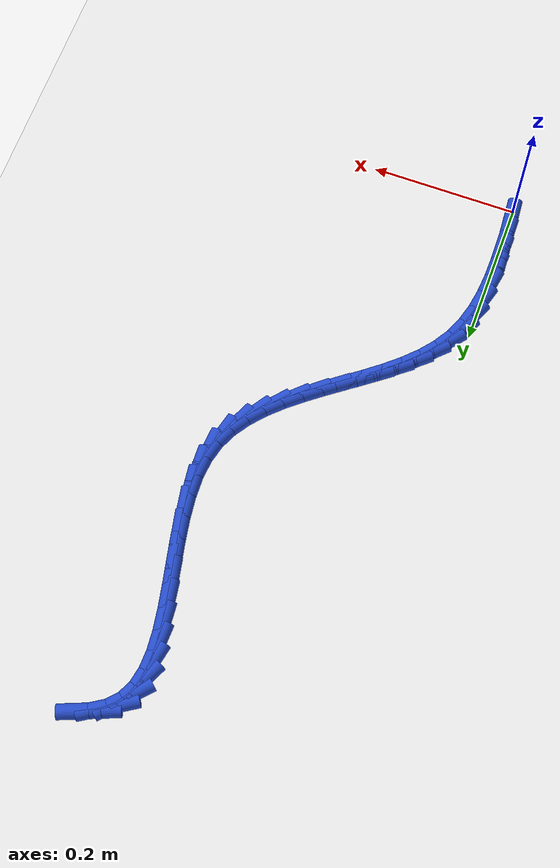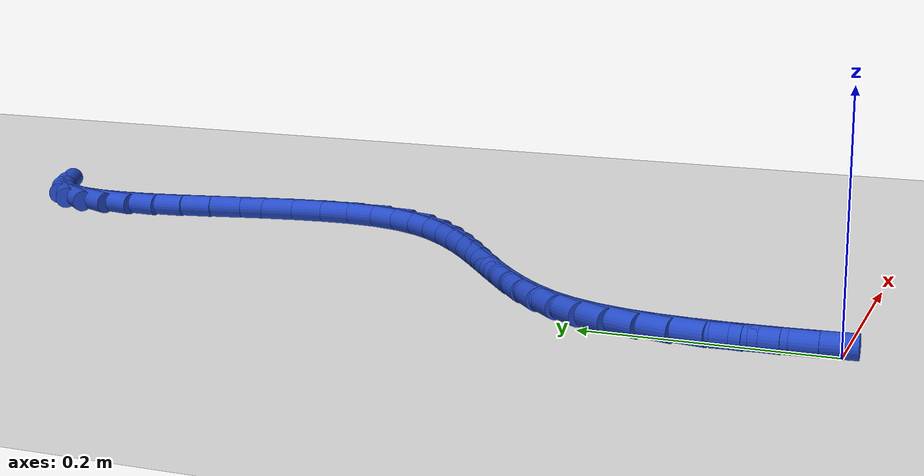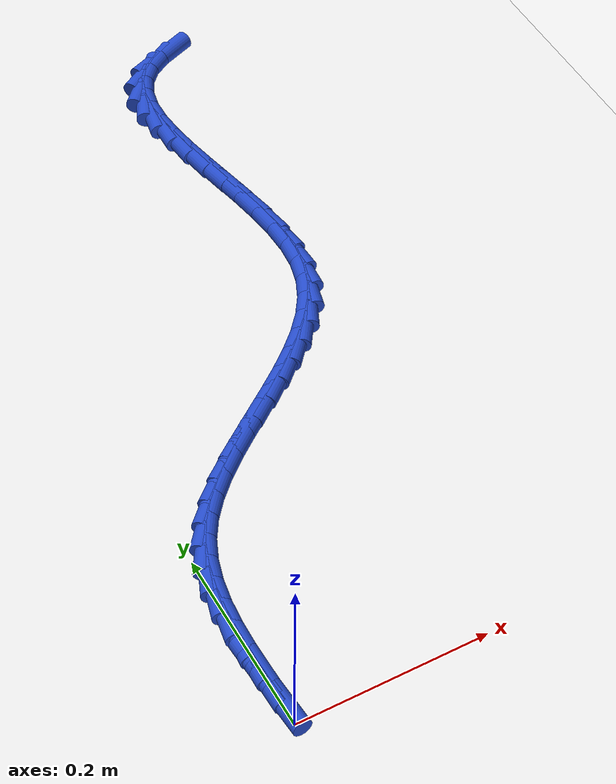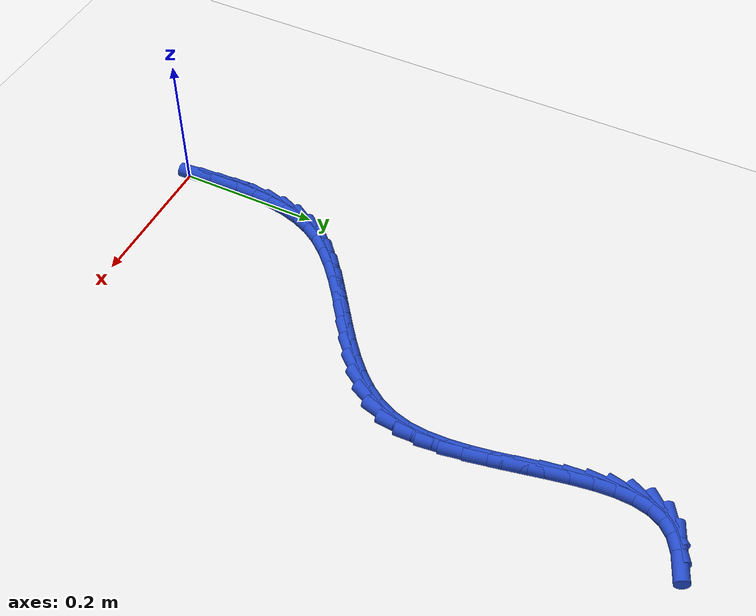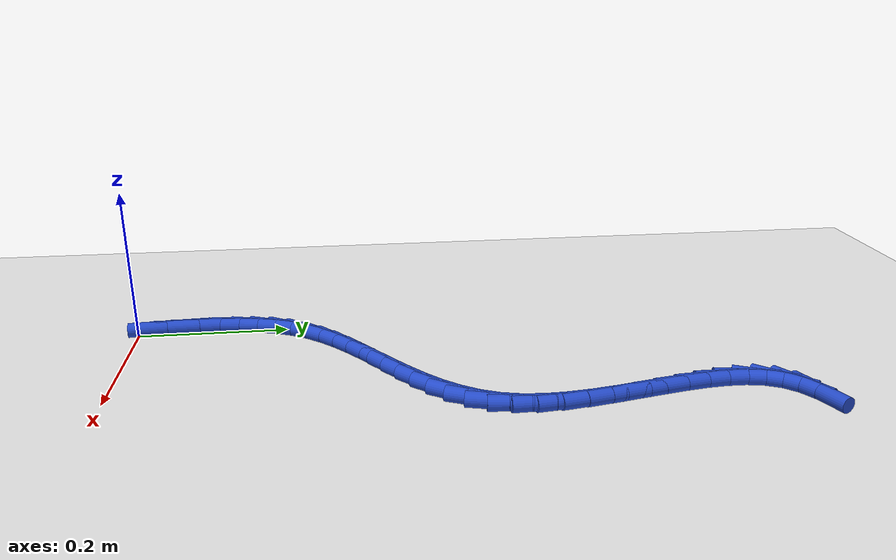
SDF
<sdf version="1.6">
 <world name="default">
  <model name="ground_plane">
   <static>1</static>
   <link name="link">
    <collision name="collision">
     <geometry><plane><normal>0 0 1</normal><size>100 100</size></plane></geometry>
     <surface><friction><ode><mu>100</mu><mu2>50</mu2></ode></friction></surface>
    </collision>
    <visual name="visual">
     <cast_shadows>0</cast_shadows>
     <geometry><plane><normal>0 0 1</normal><size>100 100</size></plane></geometry>
     <material>
      <script><uri>file://media/materials/scripts/gazebo.material</uri><name>Gazebo/WhiteGlow</name></script>
     </material>
    </visual>
   </link>
  </model>
  <model name="line">
   <link name="link_2">
    <pose>-0.0028533487512401143 0.055658057841972974 0.01 0 1.57 -1.5515178897495352</pose>
    <collision name="collision">
     <geometry><cylinder><radius>0.01</radius><length>0.08</length></cylinder></geometry>
    </collision>
    <visual name="visual">
     <material>
      <script><name>Gazebo/Blue</name><uri>file://media/materials/scripts/gazebo.material</uri></script>
     </material>
     <geometry><cylinder><radius>0.01</radius><length>0.08</length></cylinder></geometry>
    </visual>
   </link>
   <link name="link_3">
    <pose>-0.003387599189018616 0.08336695606374567 0.01 0 1.57 1.5464380096162942</pose>
    <collision name="collision">
     <geometry><cylinder><radius>0.01</radius><length>0.08</length></cylinder></geometry>
    </collision>
    <visual name="visual">
     <material>
      <script><name>Gazebo/Blue</name><uri>file://media/materials/scripts/gazebo.material</uri></script>
     </material>
     <geometry><cylinder><radius>0.01</radius><length>0.08</length></cylinder></geometry>
    </visual>
   </link>
   <link name="link_4">
    <pose>-0.0027227108026782543 0.1106577117175157 0.01 0 1.57 1.4839659882193301</pose>
    <collision name="collision">
     <geometry><cylinder><radius>0.01</radius><length>0.08</length></cylinder></geometry>
    </collision>
    <visual name="visual">
     <material>
      <script><name>Gazebo/Blue</name><uri>file://media/materials/scripts/gazebo.material</uri></script>
     </material>
     <geometry><cylinder><radius>0.01</radius><length>0.08</length></cylinder></geometry>
    </visual>
   </link>
   <link name="link_5">
    <pose>-0.00040554144305065577 0.13727678322688783 0.01 0 1.57 1.400340100375214</pose>
    <collision name="collision">
     <geometry><cylinder><radius>0.01</radius><length>0.08</length></cylinder></geometry>
    </collision>
    <visual name="visual">
     <material>
      <script><name>Gazebo/Blue</name><uri>file://media/materials/scripts/gazebo.material</uri></script>
     </material>
     <geometry><cylinder><radius>0.01</radius><length>0.08</length></cylinder></geometry>
    </visual>
   </link>
   <link name="link_6">
    <pose>0.00401705103903255 0.16297062901546686 0.01 0 1.57 1.2933699475771159</pose>
    <collision name="collision">
     <geometry><cylinder><radius>0.01</radius><length>0.08</length></cylinder></geometry>
    </collision>
    <visual name="visual">
     <material>
      <script><name>Gazebo/Blue</name><uri>file://media/materials/scripts/gazebo.material</uri></script>
     </material>
     <geometry><cylinder><radius>0.01</radius><length>0.08</length></cylinder></geometry>
    </visual>
   </link>
   <link name="link_7">
    <pose>0.010998208792739737 0.1874857075068576 0.01 0 1.57 1.1622411889832707</pose>
    <collision name="collision">
     <geometry><cylinder><radius>0.01</radius><length>0.08</length></cylinder></geometry>
    </collision>
    <visual name="visual">
     <material>
      <script><name>Gazebo/Blue</name><uri>file://media/materials/scripts/gazebo.material</uri></script>
     </material>
     <geometry><cylinder><radius>0.01</radius><length>0.08</length></cylinder></geometry>
    </visual>
   </link>
   <link name="link_8">
    <pose>0.020991073967239274 0.21056847712466498 0.01 0 1.57 1.013370379714491</pose>
    <collision name="collision">
     <geometry><cylinder><radius>0.01</radius><length>0.08</length></cylinder></geometry>
    </collision>
    <visual name="visual">
     <material>
      <script><name>Gazebo/Blue</name><uri>file://media/materials/scripts/gazebo.material</uri></script>
     </material>
     <geometry><cylinder><radius>0.01</radius><length>0.08</length></cylinder></geometry>
    </visual>
   </link>
   <link name="link_9">
    <pose>0.03435846541911029 0.23201224664798528 0.01 0 1.57 0.8814153671516375</pose>
    <collision name="collision">
     <geometry><cylinder><radius>0.01</radius><length>0.08</length></cylinder></geometry>
    </collision>
    <visual name="visual">
     <material>
      <script><name>Gazebo/Blue</name><uri>file://media/materials/scripts/gazebo.material</uri></script>
     </material>
     <geometry><cylinder><radius>0.01</radius><length>0.08</length></cylinder></geometry>
    </visual>
   </link>
   <link name="link_10">
    <pose>0.05079764593346319 0.2519555463115774 0.01 0 1.57 0.7807491866684296</pose>
    <collision name="collision">
     <geometry><cylinder><radius>0.01</radius><length>0.08</length></cylinder></geometry>
    </collision>
    <visual name="visual">
     <material>
      <script><name>Gazebo/Blue</name><uri>file://media/materials/scripts/gazebo.material</uri></script>
     </material>
     <geometry><cylinder><radius>0.01</radius><length>0.08</length></cylinder></geometry>
    </visual>
   </link>
   <link name="link_11">
    <pose>0.06970835082238525 0.27069123274243007 0.01 0 1.57 0.7088960014780832</pose>
    <collision name="collision">
     <geometry><cylinder><radius>0.01</radius><length>0.08</length></cylinder></geometry>
    </collision>
    <visual name="visual">
     <material>
      <script><name>Gazebo/Blue</name><uri>file://media/materials/scripts/gazebo.material</uri></script>
     </material>
     <geometry><cylinder><radius>0.01</radius><length>0.08</length></cylinder></geometry>
    </visual>
   </link>
   <link name="link_12">
    <pose>0.09048892853185583 0.2885128819298177 0.01 0 1.57 0.6625143995143489</pose>
    <collision name="collision">
     <geometry><cylinder><radius>0.01</radius><length>0.08</length></cylinder></geometry>
    </collision>
    <visual name="visual">
     <material>
      <script><name>Gazebo/Blue</name><uri>file://media/materials/scripts/gazebo.material</uri></script>
     </material>
     <geometry><cylinder><radius>0.01</radius><length>0.08</length></cylinder></geometry>
    </visual>
   </link>
   <link name="link_13">
    <pose>0.11253772750785415 0.30571406986301447 0.01 0 1.57 0.6389148015976219</pose>
    <collision name="collision">
     <geometry><cylinder><radius>0.01</radius><length>0.08</length></cylinder></geometry>
    </collision>
    <visual name="visual">
     <material>
      <script><name>Gazebo/Blue</name><uri>file://media/materials/scripts/gazebo.material</uri></script>
     </material>
     <geometry><cylinder><radius>0.01</radius><length>0.08</length></cylinder></geometry>
    </visual>
   </link>
   <link name="link_14">
    <pose>0.13525309619635947 0.32258837253129463 0.01 0 1.57 0.6366044481341545</pose>
    <collision name="collision">
     <geometry><cylinder><radius>0.01</radius><length>0.08</length></cylinder></geometry>
    </collision>
    <visual name="visual">
     <material>
      <script><name>Gazebo/Blue</name><uri>file://media/materials/scripts/gazebo.material</uri></script>
     </material>
     <geometry><cylinder><radius>0.01</radius><length>0.08</length></cylinder></geometry>
    </visual>
   </link>
   <link name="link_15">
    <pose>0.1580333830433512 0.3394293659239326 0.01 0 1.57 0.6554366983390438</pose>
    <collision name="collision">
     <geometry><cylinder><radius>0.01</radius><length>0.08</length></cylinder></geometry>
    </collision>
    <visual name="visual">
     <material>
      <script><name>Gazebo/Blue</name><uri>file://media/materials/scripts/gazebo.material</uri></script>
     </material>
     <geometry><cylinder><radius>0.01</radius><length>0.08</length></cylinder></geometry>
    </visual>
   </link>
   <link name="link_16">
    <pose>0.18027693649480855 0.35653062603020247 0.01 0 1.57 0.6966217642238259</pose>
    <collision name="collision">
     <geometry><cylinder><radius>0.01</radius><length>0.08</length></cylinder></geometry>
    </collision>
    <visual name="visual">
     <material>
      <script><name>Gazebo/Blue</name><uri>file://media/materials/scripts/gazebo.material</uri></script>
     </material>
     <geometry><cylinder><radius>0.01</radius><length>0.08</length></cylinder></geometry>
    </visual>
   </link>
   <link name="link_17">
    <pose>0.20138210499671072 0.3741857288393785 0.01 0 1.57 0.7626224892338953</pose>
    <collision name="collision">
     <geometry><cylinder><radius>0.01</radius><length>0.08</length></cylinder></geometry>
    </collision>
    <visual name="visual">
     <material>
      <script><name>Gazebo/Blue</name><uri>file://media/materials/scripts/gazebo.material</uri></script>
     </material>
     <geometry><cylinder><radius>0.01</radius><length>0.08</length></cylinder></geometry>
    </visual>
   </link>
   <link name="link_18">
    <pose>0.2207472369950372 0.39268825034073507 0.01 0 1.57 0.8567328615599363</pose>
    <collision name="collision">
     <geometry><cylinder><radius>0.01</radius><length>0.08</length></cylinder></geometry>
    </collision>
    <visual name="visual">
     <material>
      <script><name>Gazebo/Blue</name><uri>file://media/materials/scripts/gazebo.material</uri></script>
     </material>
     <geometry><cylinder><radius>0.01</radius><length>0.08</length></cylinder></geometry>
    </visual>
   </link>
   <link name="link_19">
    <pose>0.23777068093576703 0.41233176652354636 0.01 0 1.57 0.981873106746065</pose>
    <collision name="collision">
     <geometry><cylinder><radius>0.01</radius><length>0.08</length></cylinder></geometry>
    </collision>
    <visual name="visual">
     <material>
      <script><name>Gazebo/Blue</name><uri>file://media/materials/scripts/gazebo.material</uri></script>
     </material>
     <geometry><cylinder><radius>0.01</radius><length>0.08</length></cylinder></geometry>
    </visual>
   </link>
   <link name="link_20">
    <pose>0.25185078526487975 0.4334098533770867 0.01 0 1.57 1.1380575176344592</pose>
    <collision name="collision">
     <geometry><cylinder><radius>0.01</radius><length>0.08</length></cylinder></geometry>
    </collision>
    <visual name="visual">
     <material>
      <script><name>Gazebo/Blue</name><uri>file://media/materials/scripts/gazebo.material</uri></script>
     </material>
     <geometry><cylinder><radius>0.01</radius><length>0.08</length></cylinder></geometry>
    </visual>
   </link>
   <link name="link_21">
    <pose>0.26238589842835447 0.45621608689063037 0.01 0 1.57 1.3179124413987222</pose>
    <collision name="collision">
     <geometry><cylinder><radius>0.01</radius><length>0.08</length></cylinder></geometry>
    </collision>
    <visual name="visual">
     <material>
      <script><name>Gazebo/Blue</name><uri>file://media/materials/scripts/gazebo.material</uri></script>
     </material>
     <geometry><cylinder><radius>0.01</radius><length>0.08</length></cylinder></geometry>
    </visual>
   </link>
   <link name="link_22">
    <pose>0.26879850521428084 0.48103112983029284 0.01 0 1.57 1.4831832091265764</pose>
    <collision name="collision">
     <geometry><cylinder><radius>0.01</radius><length>0.08</length></cylinder></geometry>
    </collision>
    <visual name="visual">
     <material>
      <script><name>Gazebo/Blue</name><uri>file://media/materials/scripts/gazebo.material</uri></script>
     </material>
     <geometry><cylinder><radius>0.01</radius><length>0.08</length></cylinder></geometry>
    </visual>
   </link>
   <link name="link_23">
    <pose>0.27114931805559567 0.5077941857648482 0.01 0 1.57 -1.536789636377989</pose>
    <collision name="collision">
     <geometry><cylinder><radius>0.01</radius><length>0.08</length></cylinder></geometry>
    </collision>
    <visual name="visual">
     <material>
      <script><name>Gazebo/Blue</name><uri>file://media/materials/scripts/gazebo.material</uri></script>
     </material>
     <geometry><cylinder><radius>0.01</radius><length>0.08</length></cylinder></geometry>
    </visual>
   </link>
   <link name="link_24">
    <pose>0.27018716575591106 0.5360763080183952 0.01 0 1.57 -1.4523858012774253</pose>
    <collision name="collision">
     <geometry><cylinder><radius>0.01</radius><length>0.08</length></cylinder></geometry>
    </collision>
    <visual name="visual">
     <material>
      <script><name>Gazebo/Blue</name><uri>file://media/materials/scripts/gazebo.material</uri></script>
     </material>
     <geometry><cylinder><radius>0.01</radius><length>0.08</length></cylinder></geometry>
    </visual>
   </link>
   <link name="link_25">
    <pose>0.2666950089270692 0.5654302890014906 0.01 0 1.57 -1.3977791686058982</pose>
    <collision name="collision">
     <geometry><cylinder><radius>0.01</radius><length>0.08</length></cylinder></geometry>
    </collision>
    <visual name="visual">
     <material>
      <script><name>Gazebo/Blue</name><uri>file://media/materials/scripts/gazebo.material</uri></script>
     </material>
     <geometry><cylinder><radius>0.01</radius><length>0.08</length></cylinder></geometry>
    </visual>
   </link>
   <link name="link_26">
    <pose>0.2614558081809126 0.5954089211246922 0.01 0 1.57 -1.367920349699551</pose>
    <collision name="collision">
     <geometry><cylinder><radius>0.01</radius><length>0.08</length></cylinder></geometry>
    </collision>
    <visual name="visual">
     <material>
      <script><name>Gazebo/Blue</name><uri>file://media/materials/scripts/gazebo.material</uri></script>
     </material>
     <geometry><cylinder><radius>0.01</radius><length>0.08</length></cylinder></geometry>
    </visual>
   </link>
   <link name="link_27">
    <pose>0.25525252412928334 0.6255649967985576 0.01 0 1.57 -1.3603365968070227</pose>
    <collision name="collision">
     <geometry><cylinder><radius>0.01</radius><length>0.08</length></cylinder></geometry>
    </collision>
    <visual name="visual">
     <material>
      <script><name>Gazebo/Blue</name><uri>file://media/materials/scripts/gazebo.material</uri></script>
     </material>
     <geometry><cylinder><radius>0.01</radius><length>0.08</length></cylinder></geometry>
    </visual>
   </link>
   <link name="link_28">
    <pose>0.24886811738402376 0.655451308433644 0.01 0 1.57 -1.3750923640152828</pose>
    <collision name="collision">
     <geometry><cylinder><radius>0.01</radius><length>0.08</length></cylinder></geometry>
    </collision>
    <visual name="visual">
     <material>
      <script><name>Gazebo/Blue</name><uri>file://media/materials/scripts/gazebo.material</uri></script>
     </material>
     <geometry><cylinder><radius>0.01</radius><length>0.08</length></cylinder></geometry>
    </visual>
   </link>
   <link name="link_29">
    <pose>0.24308554855697612 0.6846206484405092 0.01 0 1.57 -1.4150340864654647</pose>
    <collision name="collision">
     <geometry><cylinder><radius>0.01</radius><length>0.08</length></cylinder></geometry>
    </collision>
    <visual name="visual">
     <material>
      <script><name>Gazebo/Blue</name><uri>file://media/materials/scripts/gazebo.material</uri></script>
     </material>
     <geometry><cylinder><radius>0.01</radius><length>0.08</length></cylinder></geometry>
    </visual>
   </link>
   <link name="link_30">
    <pose>0.23868777825998266 0.7126258092297102 0.01 0 1.57 -1.4865064708855675</pose>
    <collision name="collision">
     <geometry><cylinder><radius>0.01</radius><length>0.08</length></cylinder></geometry>
    </collision>
    <visual name="visual">
     <material>
      <script><name>Gazebo/Blue</name><uri>file://media/materials/scripts/gazebo.material</uri></script>
     </material>
     <geometry><cylinder><radius>0.01</radius><length>0.08</length></cylinder></geometry>
    </visual>
   </link>
   <link name="link_31">
    <pose>0.23645776710488567 0.7390195832118045 0.01 0 1.57 1.5411890664423105</pose>
    <collision name="collision">
     <geometry><cylinder><radius>0.01</radius><length>0.08</length></cylinder></geometry>
    </collision>
    <visual name="visual">
     <material>
      <script><name>Gazebo/Blue</name><uri>file://media/materials/scripts/gazebo.material</uri></script>
     </material>
     <geometry><cylinder><radius>0.01</radius><length>0.08</length></cylinder></geometry>
    </visual>
   </link>
   <link name="link_32">
    <pose>0.2371784757035274 0.7633547627973498 0.01 0 1.57 1.3695049922280698</pose>
    <collision name="collision">
     <geometry><cylinder><radius>0.01</radius><length>0.08</length></cylinder></geometry>
    </collision>
    <visual name="visual">
     <material>
      <script><name>Gazebo/Blue</name><uri>file://media/materials/scripts/gazebo.material</uri></script>
     </material>
     <geometry><cylinder><radius>0.01</radius><length>0.08</length></cylinder></geometry>
    </visual>
   </link>
   <link name="link_33">
    <pose>0.2416328646677502 0.7851841403969037 0.01 0 1.57 1.1271424751690373</pose>
    <collision name="collision">
     <geometry><cylinder><radius>0.01</radius><length>0.08</length></cylinder></geometry>
    </collision>
    <visual name="visual">
     <material>
      <script><name>Gazebo/Blue</name><uri>file://media/materials/scripts/gazebo.material</uri></script>
     </material>
     <geometry><cylinder><radius>0.01</radius><length>0.08</length></cylinder></geometry>
    </visual>
   </link>
   <link name="link_34">
    <pose>0.25060389460939625 0.8040605084210231 0.01 0 1.57 0.8269858121171703</pose>
    <collision name="collision">
     <geometry><cylinder><radius>0.01</radius><length>0.08</length></cylinder></geometry>
    </collision>
    <visual name="visual">
     <material>
      <script><name>Gazebo/Blue</name><uri>file://media/materials/scripts/gazebo.material</uri></script>
     </material>
     <geometry><cylinder><radius>0.01</radius><length>0.08</length></cylinder></geometry>
    </visual>
   </link>
   <link name="link_35">
    <pose>0.26485437990328886 0.8195484588265836 0.01 0 1.57 0.5571664731152798</pose>
    <collision name="collision">
     <geometry><cylinder><radius>0.01</radius><length>0.08</length></cylinder></geometry>
    </collision>
    <visual name="visual">
     <material>
      <script><name>Gazebo/Blue</name><uri>file://media/materials/scripts/gazebo.material</uri></script>
     </material>
     <geometry><cylinder><radius>0.01</radius><length>0.08</length></cylinder></geometry>
    </visual>
   </link>
   <link name="link_36">
    <pose>0.28433763234048515 0.8316867050266186 0.01 0 1.57 0.38091957048348446</pose>
    <collision name="collision">
     <geometry><cylinder><radius>0.01</radius><length>0.08</length></cylinder></geometry>
    </collision>
    <visual name="visual">
     <material>
      <script><name>Gazebo/Blue</name><uri>file://media/materials/scripts/gazebo.material</uri></script>
     </material>
     <geometry><cylinder><radius>0.01</radius><length>0.08</length></cylinder></geometry>
    </visual>
   </link>
   <link name="link_291">
    <pose>-0.0016774852110622912 0.02782632948260673 0.01 0 1.57 -1.4995212728565182</pose>
    <collision name="collision">
     <geometry><cylinder><radius>0.01</radius><length>0.08</length></cylinder></geometry>
    </collision>
    <visual name="visual">
     <material>
      <script><name>Gazebo/Blue</name><uri>file://media/materials/scripts/gazebo.material</uri></script>
     </material>
     <geometry><cylinder><radius>0.01</radius><length>0.08</length></cylinder></geometry>
    </visual>
   </link>
   <link name="link_292">
    <pose>-0.0036884173316499916 0.05599222467409272 0.01 0 1.57 -1.5050176210959112</pose>
    <collision name="collision">
     <geometry><cylinder><radius>0.01</radius><length>0.08</length></cylinder></geometry>
    </collision>
    <visual name="visual">
     <material>
      <script><name>Gazebo/Blue</name><uri>file://media/materials/scripts/gazebo.material</uri></script>
     </material>
     <geometry><cylinder><radius>0.01</radius><length>0.08</length></cylinder></geometry>
    </visual>
   </link>
  </model>
 </world>
</sdf>
